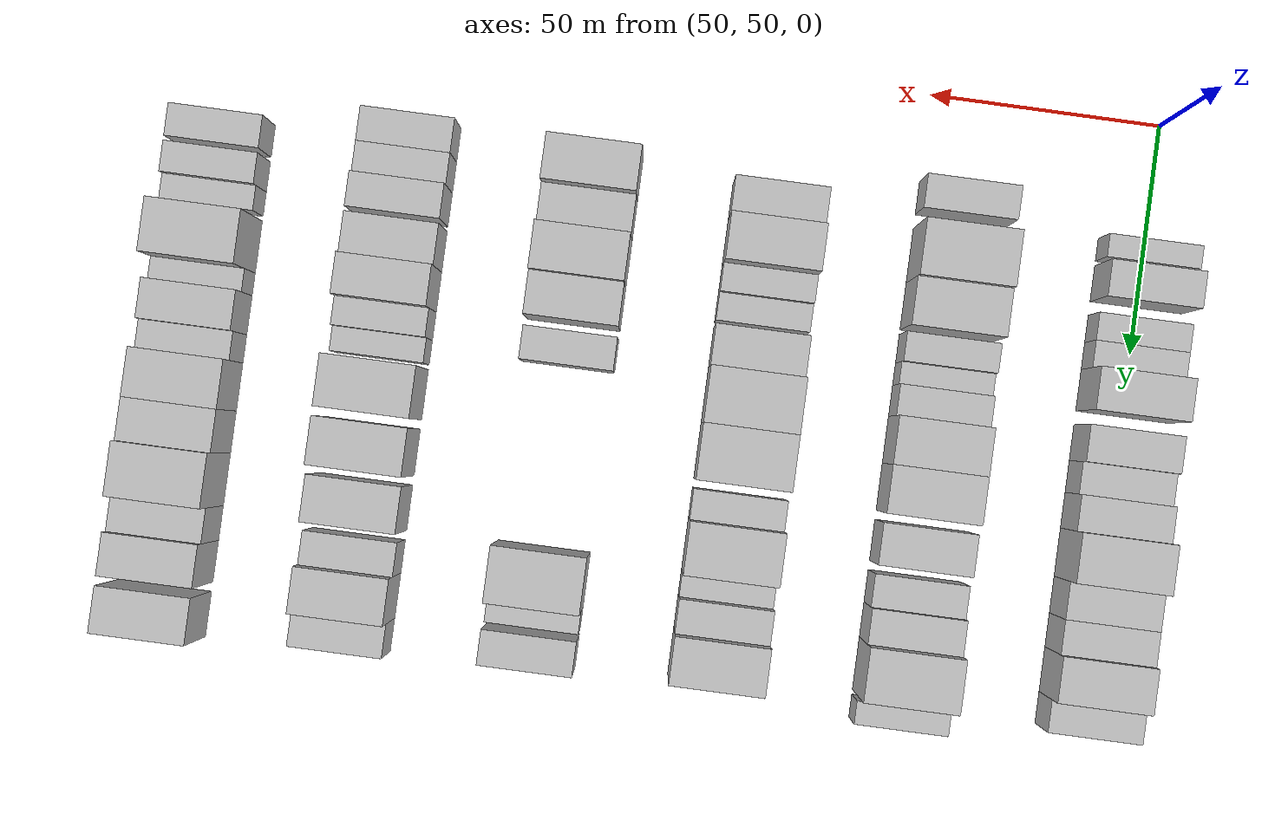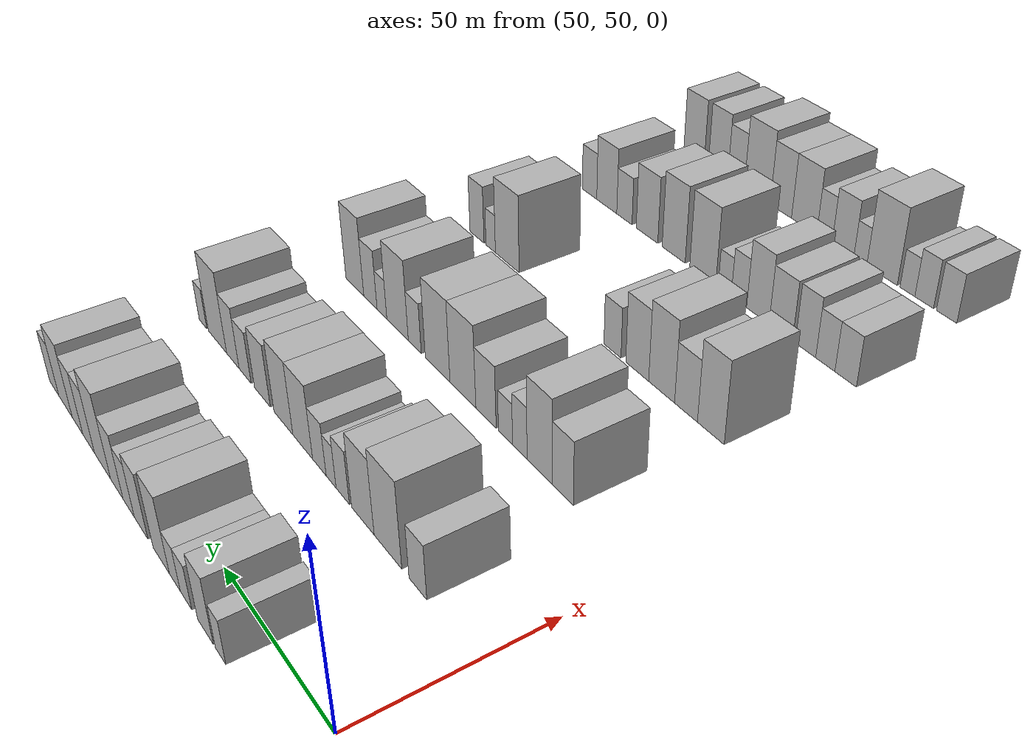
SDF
<sdf version="1.6">
 <world name="default">
  <model name="building_79">
   <static>1</static>
   <pose>50.0000 78.5266 0 0.000000 0.000000 0.000000</pose>
   <link name="link">
    <pose>0 0 6.00 0 0 0</pose>
    <collision name="collision"><geometry><box><size>20.0000 4.9561 12.0000</size></box></geometry></collision>
    <visual name="visual">
     <cast_shadows>0</cast_shadows>
     <geometry><box><size>20.0000 4.9561 12.0000</size></box></geometry>
     <material>
      <script>
       <uri>model://HANNAS_wall/materials/scripts</uri>
       <uri>model://HANNAS_wall/materials/textures</uri>
       <name>vrc/HANNAS_wall</name>
      </script>
     </material>
    </visual>
   </link>
  </model>
  <model name="building_80">
   <static>1</static>
   <pose>50.0000 85.9153 0 0.000000 0.000000 0.000000</pose>
   <link name="link">
    <pose>0 0 9.00 0 0 0</pose>
    <collision name="collision"><geometry><box><size>20.0000 7.8213 18.0000</size></box></geometry></collision>
    <visual name="visual">
     <cast_shadows>0</cast_shadows>
     <geometry><box><size>20.0000 7.8213 18.0000</size></box></geometry>
     <material>
      <script>
       <uri>model://HANNAS_wall/materials/scripts</uri>
       <uri>model://HANNAS_wall/materials/textures</uri>
       <name>vrc/HANNAS_wall</name>
      </script>
     </material>
    </visual>
   </link>
  </model>
  <model name="building_81">
   <static>1</static>
   <pose>50.0000 95.8062 0 0.000000 0.000000 0.000000</pose>
   <link name="link">
    <pose>0 0 6.00 0 0 0</pose>
    <collision name="collision"><geometry><box><size>20.0000 5.9605 12.0000</size></box></geometry></collision>
    <visual name="visual">
     <cast_shadows>0</cast_shadows>
     <geometry><box><size>20.0000 5.9605 12.0000</size></box></geometry>
     <material>
      <script>
       <uri>model://HANNAS_wall/materials/scripts</uri>
       <uri>model://HANNAS_wall/materials/textures</uri>
       <name>vrc/HANNAS_wall</name>
      </script>
     </material>
    </visual>
   </link>
  </model>
  <model name="building_82">
   <static>1</static>
   <pose>50.0000 101.7150 0 0.000000 0.000000 0.000000</pose>
   <link name="link">
    <pose>0 0 6.00 0 0 0</pose>
    <collision name="collision"><geometry><box><size>20.0000 5.8570 12.0000</size></box></geometry></collision>
    <visual name="visual">
     <cast_shadows>0</cast_shadows>
     <geometry><box><size>20.0000 5.8570 12.0000</size></box></geometry>
     <material>
      <script>
       <uri>model://HANNAS_wall/materials/scripts</uri>
       <uri>model://HANNAS_wall/materials/textures</uri>
       <name>vrc/HANNAS_wall</name>
      </script>
     </material>
    </visual>
   </link>
  </model>
  <model name="building_83">
   <static>1</static>
   <pose>50.0000 109.1819 0 0.000000 0.000000 0.000000</pose>
   <link name="link">
    <pose>0 0 10.50 0 0 0</pose>
    <collision name="collision"><geometry><box><size>20.0000 9.0769 21.0000</size></box></geometry></collision>
    <visual name="visual">
     <cast_shadows>0</cast_shadows>
     <geometry><box><size>20.0000 9.0769 21.0000</size></box></geometry>
     <material>
      <script>
       <uri>model://HANNAS_wall/materials/scripts</uri>
       <uri>model://HANNAS_wall/materials/textures</uri>
       <name>vrc/HANNAS_wall</name>
      </script>
     </material>
    </visual>
   </link>
  </model>
  <model name="building_84">
   <static>1</static>
   <pose>50.0000 120.6577 0 0.000000 0.000000 0.000000</pose>
   <link name="link">
    <pose>0 0 9.00 0 0 0</pose>
    <collision name="collision"><geometry><box><size>20.0000 7.8748 18.0000</size></box></geometry></collision>
    <visual name="visual">
     <cast_shadows>0</cast_shadows>
     <geometry><box><size>20.0000 7.8748 18.0000</size></box></geometry>
     <material>
      <script>
       <uri>model://HANNAS_wall/materials/scripts</uri>
       <uri>model://HANNAS_wall/materials/textures</uri>
       <name>vrc/HANNAS_wall</name>
      </script>
     </material>
    </visual>
   </link>
  </model>
  <model name="building_85">
   <static>1</static>
   <pose>50.0000 128.0377 0 0.000000 0.000000 0.000000</pose>
   <link name="link">
    <pose>0 0 7.50 0 0 0</pose>
    <collision name="collision"><geometry><box><size>20.0000 6.8852 15.0000</size></box></geometry></collision>
    <visual name="visual">
     <cast_shadows>0</cast_shadows>
     <geometry><box><size>20.0000 6.8852 15.0000</size></box></geometry>
     <material>
      <script>
       <uri>model://HANNAS_wall/materials/scripts</uri>
       <uri>model://HANNAS_wall/materials/textures</uri>
       <name>vrc/HANNAS_wall</name>
      </script>
     </material>
    </visual>
   </link>
  </model>
  <model name="building_86">
   <static>1</static>
   <pose>50.0000 135.3490 0 0.000000 0.000000 0.000000</pose>
   <link name="link">
    <pose>0 0 9.00 0 0 0</pose>
    <collision name="collision"><geometry><box><size>20.0000 7.7374 18.0000</size></box></geometry></collision>
    <visual name="visual">
     <cast_shadows>0</cast_shadows>
     <geometry><box><size>20.0000 7.7374 18.0000</size></box></geometry>
     <material>
      <script>
       <uri>model://HANNAS_wall/materials/scripts</uri>
       <uri>model://HANNAS_wall/materials/textures</uri>
       <name>vrc/HANNAS_wall</name>
      </script>
     </material>
    </visual>
   </link>
  </model>
  <model name="building_87">
   <static>1</static>
   <pose>50.0000 144.4885 0 0.000000 0.000000 0.000000</pose>
   <link name="link">
    <pose>0 0 12.00 0 0 0</pose>
    <collision name="collision"><geometry><box><size>20.0000 10.5414 24.0000</size></box></geometry></collision>
    <visual name="visual">
     <cast_shadows>0</cast_shadows>
     <geometry><box><size>20.0000 10.5414 24.0000</size></box></geometry>
     <material>
      <script>
       <uri>model://HANNAS_wall/materials/scripts</uri>
       <uri>model://HANNAS_wall/materials/textures</uri>
       <name>vrc/HANNAS_wall</name>
      </script>
     </material>
    </visual>
   </link>
  </model>
  <model name="building_88">
   <static>1</static>
   <pose>50.0000 153.7302 0 0.000000 0.000000 0.000000</pose>
   <link name="link">
    <pose>0 0 9.00 0 0 0</pose>
    <collision name="collision"><geometry><box><size>20.0000 7.9421 18.0000</size></box></geometry></collision>
    <visual name="visual">
     <cast_shadows>0</cast_shadows>
     <geometry><box><size>20.0000 7.9421 18.0000</size></box></geometry>
     <material>
      <script>
       <uri>model://HANNAS_wall/materials/scripts</uri>
       <uri>model://HANNAS_wall/materials/textures</uri>
       <name>vrc/HANNAS_wall</name>
      </script>
     </material>
    </visual>
   </link>
  </model>
  <model name="building_89">
   <static>1</static>
   <pose>50.0000 161.4098 0 0.000000 0.000000 0.000000</pose>
   <link name="link">
    <pose>0 0 9.00 0 0 0</pose>
    <collision name="collision"><geometry><box><size>20.0000 7.4171 18.0000</size></box></geometry></collision>
    <visual name="visual">
     <cast_shadows>0</cast_shadows>
     <geometry><box><size>20.0000 7.4171 18.0000</size></box></geometry>
     <material>
      <script>
       <uri>model://HANNAS_wall/materials/scripts</uri>
       <uri>model://HANNAS_wall/materials/textures</uri>
       <name>vrc/HANNAS_wall</name>
      </script>
     </material>
    </visual>
   </link>
  </model>
  <model name="building_90">
   <static>1</static>
   <pose>50.0000 169.9798 0 0.000000 0.000000 0.000000</pose>
   <link name="link">
    <pose>0 0 10.50 0 0 0</pose>
    <collision name="collision"><geometry><box><size>20.0000 9.7229 21.0000</size></box></geometry></collision>
    <visual name="visual">
     <cast_shadows>0</cast_shadows>
     <geometry><box><size>20.0000 9.7229 21.0000</size></box></geometry>
     <material>
      <script>
       <uri>model://HANNAS_wall/materials/scripts</uri>
       <uri>model://HANNAS_wall/materials/textures</uri>
       <name>vrc/HANNAS_wall</name>
      </script>
     </material>
    </visual>
   </link>
  </model>
  <model name="building_91">
   <static>1</static>
   <pose>50.0000 178.2865 0 0.000000 0.000000 0.000000</pose>
   <link name="link">
    <pose>0 0 7.50 0 0 0</pose>
    <collision name="collision"><geometry><box><size>20.0000 6.8904 15.0000</size></box></geometry></collision>
    <visual name="visual">
     <cast_shadows>0</cast_shadows>
     <geometry><box><size>20.0000 6.8904 15.0000</size></box></geometry>
     <material>
      <script>
       <uri>model://HANNAS_wall/materials/scripts</uri>
       <uri>model://HANNAS_wall/materials/textures</uri>
       <name>vrc/HANNAS_wall</name>
      </script>
     </material>
    </visual>
   </link>
  </model>
  <model name="building_218">
   <static>1</static>
   <pose>90.0000 72.5578 0 0.000000 0.000000 0.000000</pose>
   <link name="link">
    <pose>0 0 7.50 0 0 0</pose>
    <collision name="collision"><geometry><box><size>20.0000 7.2474 15.0000</size></box></geometry></collision>
    <visual name="visual">
     <cast_shadows>0</cast_shadows>
     <geometry><box><size>20.0000 7.2474 15.0000</size></box></geometry>
     <material>
      <script>
       <uri>model://HANNAS_wall/materials/scripts</uri>
       <uri>model://HANNAS_wall/materials/textures</uri>
       <name>vrc/HANNAS_wall</name>
      </script>
     </material>
    </visual>
   </link>
  </model>
  <model name="building_219">
   <static>1</static>
   <pose>90.0000 85.1501 0 0.000000 0.000000 0.000000</pose>
   <link name="link">
    <pose>0 0 12.00 0 0 0</pose>
    <collision name="collision"><geometry><box><size>20.0000 11.9372 24.0000</size></box></geometry></collision>
    <visual name="visual">
     <cast_shadows>0</cast_shadows>
     <geometry><box><size>20.0000 11.9372 24.0000</size></box></geometry>
     <material>
      <script>
       <uri>model://HANNAS_wall/materials/scripts</uri>
       <uri>model://HANNAS_wall/materials/textures</uri>
       <name>vrc/HANNAS_wall</name>
      </script>
     </material>
    </visual>
   </link>
  </model>
  <model name="building_220">
   <static>1</static>
   <pose>90.0000 96.2433 0 0.000000 0.000000 0.000000</pose>
   <link name="link">
    <pose>0 0 10.50 0 0 0</pose>
    <collision name="collision"><geometry><box><size>20.0000 10.2491 21.0000</size></box></geometry></collision>
    <visual name="visual">
     <cast_shadows>0</cast_shadows>
     <geometry><box><size>20.0000 10.2491 21.0000</size></box></geometry>
     <material>
      <script>
       <uri>model://HANNAS_wall/materials/scripts</uri>
       <uri>model://HANNAS_wall/materials/textures</uri>
       <name>vrc/HANNAS_wall</name>
      </script>
     </material>
    </visual>
   </link>
  </model>
  <model name="building_221">
   <static>1</static>
   <pose>90.0000 105.5268 0 0.000000 0.000000 0.000000</pose>
   <link name="link">
    <pose>0 0 7.50 0 0 0</pose>
    <collision name="collision"><geometry><box><size>20.0000 6.3178 15.0000</size></box></geometry></collision>
    <visual name="visual">
     <cast_shadows>0</cast_shadows>
     <geometry><box><size>20.0000 6.3178 15.0000</size></box></geometry>
     <material>
      <script>
       <uri>model://HANNAS_wall/materials/scripts</uri>
       <uri>model://HANNAS_wall/materials/textures</uri>
       <name>vrc/HANNAS_wall</name>
      </script>
     </material>
    </visual>
   </link>
  </model>
  <model name="building_222">
   <static>1</static>
   <pose>90.0000 111.1008 0 0.000000 0.000000 0.000000</pose>
   <link name="link">
    <pose>0 0 6.00 0 0 0</pose>
    <collision name="collision"><geometry><box><size>20.0000 4.8302 12.0000</size></box></geometry></collision>
    <visual name="visual">
     <cast_shadows>0</cast_shadows>
     <geometry><box><size>20.0000 4.8302 12.0000</size></box></geometry>
     <material>
      <script>
       <uri>model://HANNAS_wall/materials/scripts</uri>
       <uri>model://HANNAS_wall/materials/textures</uri>
       <name>vrc/HANNAS_wall</name>
      </script>
     </material>
    </visual>
   </link>
  </model>
  <model name="building_223">
   <static>1</static>
   <pose>90.0000 116.8821 0 0.000000 0.000000 0.000000</pose>
   <link name="link">
    <pose>0 0 7.50 0 0 0</pose>
    <collision name="collision"><geometry><box><size>20.0000 6.7323 15.0000</size></box></geometry></collision>
    <visual name="visual">
     <cast_shadows>0</cast_shadows>
     <geometry><box><size>20.0000 6.7323 15.0000</size></box></geometry>
     <material>
      <script>
       <uri>model://HANNAS_wall/materials/scripts</uri>
       <uri>model://HANNAS_wall/materials/textures</uri>
       <name>vrc/HANNAS_wall</name>
      </script>
     </material>
    </visual>
   </link>
  </model>
  <model name="building_224">
   <static>1</static>
   <pose>90.0000 125.3659 0 0.000000 0.000000 0.000000</pose>
   <link name="link">
    <pose>0 0 10.50 0 0 0</pose>
    <collision name="collision"><geometry><box><size>20.0000 10.2353 21.0000</size></box></geometry></collision>
    <visual name="visual">
     <cast_shadows>0</cast_shadows>
     <geometry><box><size>20.0000 10.2353 21.0000</size></box></geometry>
     <material>
      <script>
       <uri>model://HANNAS_wall/materials/scripts</uri>
       <uri>model://HANNAS_wall/materials/textures</uri>
       <name>vrc/HANNAS_wall</name>
      </script>
     </material>
    </visual>
   </link>
  </model>
  <model name="building_225">
   <static>1</static>
   <pose>90.0000 135.5901 0 0.000000 0.000000 0.000000</pose>
   <link name="link">
    <pose>0 0 10.50 0 0 0</pose>
    <collision name="collision"><geometry><box><size>20.0000 10.2130 21.0000</size></box></geometry></collision>
    <visual name="visual">
     <cast_shadows>0</cast_shadows>
     <geometry><box><size>20.0000 10.2130 21.0000</size></box></geometry>
     <material>
      <script>
       <uri>model://HANNAS_wall/materials/scripts</uri>
       <uri>model://HANNAS_wall/materials/textures</uri>
       <name>vrc/HANNAS_wall</name>
      </script>
     </material>
    </visual>
   </link>
  </model>
  <model name="building_226">
   <static>1</static>
   <pose>90.0000 147.1667 0 0.000000 0.000000 0.000000</pose>
   <link name="link">
    <pose>0 0 9.00 0 0 0</pose>
    <collision name="collision"><geometry><box><size>20.0000 8.9402 18.0000</size></box></geometry></collision>
    <visual name="visual">
     <cast_shadows>0</cast_shadows>
     <geometry><box><size>20.0000 8.9402 18.0000</size></box></geometry>
     <material>
      <script>
       <uri>model://HANNAS_wall/materials/scripts</uri>
       <uri>model://HANNAS_wall/materials/textures</uri>
       <name>vrc/HANNAS_wall</name>
      </script>
     </material>
    </visual>
   </link>
  </model>
  <model name="building_227">
   <static>1</static>
   <pose>90.0000 157.1695 0 0.000000 0.000000 0.000000</pose>
   <link name="link">
    <pose>0 0 7.50 0 0 0</pose>
    <collision name="collision"><geometry><box><size>20.0000 7.0654 15.0000</size></box></geometry></collision>
    <visual name="visual">
     <cast_shadows>0</cast_shadows>
     <geometry><box><size>20.0000 7.0654 15.0000</size></box></geometry>
     <material>
      <script>
       <uri>model://HANNAS_wall/materials/scripts</uri>
       <uri>model://HANNAS_wall/materials/textures</uri>
       <name>vrc/HANNAS_wall</name>
      </script>
     </material>
    </visual>
   </link>
  </model>
  <model name="building_228">
   <static>1</static>
   <pose>90.0000 164.5035 0 0.000000 0.000000 0.000000</pose>
   <link name="link">
    <pose>0 0 9.00 0 0 0</pose>
    <collision name="collision"><geometry><box><size>20.0000 7.6026 18.0000</size></box></geometry></collision>
    <visual name="visual">
     <cast_shadows>0</cast_shadows>
     <geometry><box><size>20.0000 7.6026 18.0000</size></box></geometry>
     <material>
      <script>
       <uri>model://HANNAS_wall/materials/scripts</uri>
       <uri>model://HANNAS_wall/materials/textures</uri>
       <name>vrc/HANNAS_wall</name>
      </script>
     </material>
    </visual>
   </link>
  </model>
  <model name="building_229">
   <static>1</static>
   <pose>90.0000 174.0347 0 0.000000 0.000000 0.000000</pose>
   <link name="link">
    <pose>0 0 12.00 0 0 0</pose>
    <collision name="collision"><geometry><box><size>20.0000 11.4598 24.0000</size></box></geometry></collision>
    <visual name="visual">
     <cast_shadows>0</cast_shadows>
     <geometry><box><size>20.0000 11.4598 24.0000</size></box></geometry>
     <material>
      <script>
       <uri>model://HANNAS_wall/materials/scripts</uri>
       <uri>model://HANNAS_wall/materials/textures</uri>
       <name>vrc/HANNAS_wall</name>
      </script>
     </material>
    </visual>
   </link>
  </model>
  <model name="building_230">
   <static>1</static>
   <pose>90.0000 183.2407 0 0.000000 0.000000 0.000000</pose>
   <link name="link">
    <pose>0 0 6.00 0 0 0</pose>
    <collision name="collision"><geometry><box><size>20.0000 4.9522 12.0000</size></box></geometry></collision>
    <visual name="visual">
     <cast_shadows>0</cast_shadows>
     <geometry><box><size>20.0000 4.9522 12.0000</size></box></geometry>
     <material>
      <script>
       <uri>model://HANNAS_wall/materials/scripts</uri>
       <uri>model://HANNAS_wall/materials/textures</uri>
       <name>vrc/HANNAS_wall</name>
      </script>
     </material>
    </visual>
   </link>
  </model>
  <model name="building_348">
   <static>1</static>
   <pose>130.0000 79.0919 0 0.000000 0.000000 0.000000</pose>
   <link name="link">
    <pose>0 0 9.00 0 0 0</pose>
    <collision name="collision"><geometry><box><size>20.0000 8.2131 18.0000</size></box></geometry></collision>
    <visual name="visual">
     <cast_shadows>0</cast_shadows>
     <geometry><box><size>20.0000 8.2131 18.0000</size></box></geometry>
     <material>
      <script>
       <uri>model://HANNAS_wall/materials/scripts</uri>
       <uri>model://HANNAS_wall/materials/textures</uri>
       <name>vrc/HANNAS_wall</name>
      </script>
     </material>
    </visual>
   </link>
  </model>
  <model name="building_349">
   <static>1</static>
   <pose>130.0000 88.1935 0 0.000000 0.000000 0.000000</pose>
   <link name="link">
    <pose>0 0 12.00 0 0 0</pose>
    <collision name="collision"><geometry><box><size>20.0000 9.9902 24.0000</size></box></geometry></collision>
    <visual name="visual">
     <cast_shadows>0</cast_shadows>
     <geometry><box><size>20.0000 9.9902 24.0000</size></box></geometry>
     <material>
      <script>
       <uri>model://HANNAS_wall/materials/scripts</uri>
       <uri>model://HANNAS_wall/materials/textures</uri>
       <name>vrc/HANNAS_wall</name>
      </script>
     </material>
    </visual>
   </link>
  </model>
  <model name="building_350">
   <static>1</static>
   <pose>130.0000 96.2096 0 0.000000 0.000000 0.000000</pose>
   <link name="link">
    <pose>0 0 7.50 0 0 0</pose>
    <collision name="collision"><geometry><box><size>20.0000 6.0419 15.0000</size></box></geometry></collision>
    <visual name="visual">
     <cast_shadows>0</cast_shadows>
     <geometry><box><size>20.0000 6.0419 15.0000</size></box></geometry>
     <material>
      <script>
       <uri>model://HANNAS_wall/materials/scripts</uri>
       <uri>model://HANNAS_wall/materials/textures</uri>
       <name>vrc/HANNAS_wall</name>
      </script>
     </material>
    </visual>
   </link>
  </model>
  <model name="building_351">
   <static>1</static>
   <pose>130.0000 102.2278 0 0.000000 0.000000 0.000000</pose>
   <link name="link">
    <pose>0 0 6.00 0 0 0</pose>
    <collision name="collision"><geometry><box><size>20.0000 5.9946 12.0000</size></box></geometry></collision>
    <visual name="visual">
     <cast_shadows>0</cast_shadows>
     <geometry><box><size>20.0000 5.9946 12.0000</size></box></geometry>
     <material>
      <script>
       <uri>model://HANNAS_wall/materials/scripts</uri>
       <uri>model://HANNAS_wall/materials/textures</uri>
       <name>vrc/HANNAS_wall</name>
      </script>
     </material>
    </visual>
   </link>
  </model>
  <model name="building_352">
   <static>1</static>
   <pose>130.0000 110.6899 0 0.000000 0.000000 0.000000</pose>
   <link name="link">
    <pose>0 0 9.00 0 0 0</pose>
    <collision name="collision"><geometry><box><size>20.0000 8.9295 18.0000</size></box></geometry></collision>
    <visual name="visual">
     <cast_shadows>0</cast_shadows>
     <geometry><box><size>20.0000 8.9295 18.0000</size></box></geometry>
     <material>
      <script>
       <uri>model://HANNAS_wall/materials/scripts</uri>
       <uri>model://HANNAS_wall/materials/textures</uri>
       <name>vrc/HANNAS_wall</name>
      </script>
     </material>
    </visual>
   </link>
  </model>
  <model name="building_353">
   <static>1</static>
   <pose>130.0000 121.1215 0 0.000000 0.000000 0.000000</pose>
   <link name="link">
    <pose>0 0 12.00 0 0 0</pose>
    <collision name="collision"><geometry><box><size>20.0000 11.9339 24.0000</size></box></geometry></collision>
    <visual name="visual">
     <cast_shadows>0</cast_shadows>
     <geometry><box><size>20.0000 11.9339 24.0000</size></box></geometry>
     <material>
      <script>
       <uri>model://HANNAS_wall/materials/scripts</uri>
       <uri>model://HANNAS_wall/materials/textures</uri>
       <name>vrc/HANNAS_wall</name>
      </script>
     </material>
    </visual>
   </link>
  </model>
  <model name="building_354">
   <static>1</static>
   <pose>130.0000 133.0567 0 0.000000 0.000000 0.000000</pose>
   <link name="link">
    <pose>0 0 12.00 0 0 0</pose>
    <collision name="collision"><geometry><box><size>20.0000 11.9364 24.0000</size></box></geometry></collision>
    <visual name="visual">
     <cast_shadows>0</cast_shadows>
     <geometry><box><size>20.0000 11.9364 24.0000</size></box></geometry>
     <material>
      <script>
       <uri>model://HANNAS_wall/materials/scripts</uri>
       <uri>model://HANNAS_wall/materials/textures</uri>
       <name>vrc/HANNAS_wall</name>
      </script>
     </material>
    </visual>
   </link>
  </model>
  <model name="building_355">
   <static>1</static>
   <pose>130.0000 144.3015 0 0.000000 0.000000 0.000000</pose>
   <link name="link">
    <pose>0 0 7.50 0 0 0</pose>
    <collision name="collision"><geometry><box><size>20.0000 6.5532 15.0000</size></box></geometry></collision>
    <visual name="visual">
     <cast_shadows>0</cast_shadows>
     <geometry><box><size>20.0000 6.5532 15.0000</size></box></geometry>
     <material>
      <script>
       <uri>model://HANNAS_wall/materials/scripts</uri>
       <uri>model://HANNAS_wall/materials/textures</uri>
       <name>vrc/HANNAS_wall</name>
      </script>
     </material>
    </visual>
   </link>
  </model>
  <model name="building_356">
   <static>1</static>
   <pose>130.0000 153.1921 0 0.000000 0.000000 0.000000</pose>
   <link name="link">
    <pose>0 0 12.00 0 0 0</pose>
    <collision name="collision"><geometry><box><size>20.0000 11.2281 24.0000</size></box></geometry></collision>
    <visual name="visual">
     <cast_shadows>0</cast_shadows>
     <geometry><box><size>20.0000 11.2281 24.0000</size></box></geometry>
     <material>
      <script>
       <uri>model://HANNAS_wall/materials/scripts</uri>
       <uri>model://HANNAS_wall/materials/textures</uri>
       <name>vrc/HANNAS_wall</name>
      </script>
     </material>
    </visual>
   </link>
  </model>
  <model name="building_357">
   <static>1</static>
   <pose>130.0000 161.4368 0 0.000000 0.000000 0.000000</pose>
   <link name="link">
    <pose>0 0 6.00 0 0 0</pose>
    <collision name="collision"><geometry><box><size>20.0000 5.2612 12.0000</size></box></geometry></collision>
    <visual name="visual">
     <cast_shadows>0</cast_shadows>
     <geometry><box><size>20.0000 5.2612 12.0000</size></box></geometry>
     <material>
      <script>
       <uri>model://HANNAS_wall/materials/scripts</uri>
       <uri>model://HANNAS_wall/materials/textures</uri>
       <name>vrc/HANNAS_wall</name>
      </script>
     </material>
    </visual>
   </link>
  </model>
  <model name="building_358">
   <static>1</static>
   <pose>130.0000 167.7243 0 0.000000 0.000000 0.000000</pose>
   <link name="link">
    <pose>0 0 9.00 0 0 0</pose>
    <collision name="collision"><geometry><box><size>20.0000 7.3138 18.0000</size></box></geometry></collision>
    <visual name="visual">
     <cast_shadows>0</cast_shadows>
     <geometry><box><size>20.0000 7.3138 18.0000</size></box></geometry>
     <material>
      <script>
       <uri>model://HANNAS_wall/materials/scripts</uri>
       <uri>model://HANNAS_wall/materials/textures</uri>
       <name>vrc/HANNAS_wall</name>
      </script>
     </material>
    </visual>
   </link>
  </model>
  <model name="building_359">
   <static>1</static>
   <pose>130.0000 176.4568 0 0.000000 0.000000 0.000000</pose>
   <link name="link">
    <pose>0 0 12.00 0 0 0</pose>
    <collision name="collision"><geometry><box><size>20.0000 10.1512 24.0000</size></box></geometry></collision>
    <visual name="visual">
     <cast_shadows>0</cast_shadows>
     <geometry><box><size>20.0000 10.1512 24.0000</size></box></geometry>
     <material>
      <script>
       <uri>model://HANNAS_wall/materials/scripts</uri>
       <uri>model://HANNAS_wall/materials/textures</uri>
       <name>vrc/HANNAS_wall</name>
      </script>
     </material>
    </visual>
   </link>
  </model>
  <model name="building_473">
   <static>1</static>
   <pose>170.0000 77.0119 0 0.000000 0.000000 0.000000</pose>
   <link name="link">
    <pose>0 0 12.00 0 0 0</pose>
    <collision name="collision"><geometry><box><size>20.0000 9.6769 24.0000</size></box></geometry></collision>
    <visual name="visual">
     <cast_shadows>0</cast_shadows>
     <geometry><box><size>20.0000 9.6769 24.0000</size></box></geometry>
     <material>
      <script>
       <uri>model://HANNAS_wall/materials/scripts</uri>
       <uri>model://HANNAS_wall/materials/textures</uri>
       <name>vrc/HANNAS_wall</name>
      </script>
     </material>
    </visual>
   </link>
  </model>
  <model name="building_474">
   <static>1</static>
   <pose>170.0000 86.1247 0 0.000000 0.000000 0.000000</pose>
   <link name="link">
    <pose>0 0 9.00 0 0 0</pose>
    <collision name="collision"><geometry><box><size>20.0000 8.5487 18.0000</size></box></geometry></collision>
    <visual name="visual">
     <cast_shadows>0</cast_shadows>
     <geometry><box><size>20.0000 8.5487 18.0000</size></box></geometry>
     <material>
      <script>
       <uri>model://HANNAS_wall/materials/scripts</uri>
       <uri>model://HANNAS_wall/materials/textures</uri>
       <name>vrc/HANNAS_wall</name>
      </script>
     </material>
    </visual>
   </link>
  </model>
  <model name="building_475">
   <static>1</static>
   <pose>170.0000 95.4562 0 0.000000 0.000000 0.000000</pose>
   <link name="link">
    <pose>0 0 12.00 0 0 0</pose>
    <collision name="collision"><geometry><box><size>20.0000 10.1144 24.0000</size></box></geometry></collision>
    <visual name="visual">
     <cast_shadows>0</cast_shadows>
     <geometry><box><size>20.0000 10.1144 24.0000</size></box></geometry>
     <material>
      <script>
       <uri>model://HANNAS_wall/materials/scripts</uri>
       <uri>model://HANNAS_wall/materials/textures</uri>
       <name>vrc/HANNAS_wall</name>
      </script>
     </material>
    </visual>
   </link>
  </model>
  <model name="building_476">
   <static>1</static>
   <pose>170.0000 105.1400 0 0.000000 0.000000 0.000000</pose>
   <link name="link">
    <pose>0 0 10.50 0 0 0</pose>
    <collision name="collision"><geometry><box><size>20.0000 9.2533 21.0000</size></box></geometry></collision>
    <visual name="visual">
     <cast_shadows>0</cast_shadows>
     <geometry><box><size>20.0000 9.2533 21.0000</size></box></geometry>
     <material>
      <script>
       <uri>model://HANNAS_wall/materials/scripts</uri>
       <uri>model://HANNAS_wall/materials/textures</uri>
       <name>vrc/HANNAS_wall</name>
      </script>
     </material>
    </visual>
   </link>
  </model>
  <model name="building_477">
   <static>1</static>
   <pose>170.0000 115.3494 0 0.000000 0.000000 0.000000</pose>
   <link name="link">
    <pose>0 0 7.50 0 0 0</pose>
    <collision name="collision"><geometry><box><size>20.0000 7.1655 15.0000</size></box></geometry></collision>
    <visual name="visual">
     <cast_shadows>0</cast_shadows>
     <geometry><box><size>20.0000 7.1655 15.0000</size></box></geometry>
     <material>
      <script>
       <uri>model://HANNAS_wall/materials/scripts</uri>
       <uri>model://HANNAS_wall/materials/textures</uri>
       <name>vrc/HANNAS_wall</name>
      </script>
     </material>
    </visual>
   </link>
  </model>
  <model name="building_478">
   <static>1</static>
   <pose>170.0000 163.9040 0 0.000000 0.000000 0.000000</pose>
   <link name="link">
    <pose>0 0 12.00 0 0 0</pose>
    <collision name="collision"><geometry><box><size>20.0000 11.9812 24.0000</size></box></geometry></collision>
    <visual name="visual">
     <cast_shadows>0</cast_shadows>
     <geometry><box><size>20.0000 11.9812 24.0000</size></box></geometry>
     <material>
      <script>
       <uri>model://HANNAS_wall/materials/scripts</uri>
       <uri>model://HANNAS_wall/materials/textures</uri>
       <name>vrc/HANNAS_wall</name>
      </script>
     </material>
    </visual>
   </link>
  </model>
  <model name="building_479">
   <static>1</static>
   <pose>170.0000 172.3459 0 0.000000 0.000000 0.000000</pose>
   <link name="link">
    <pose>0 0 6.00 0 0 0</pose>
    <collision name="collision"><geometry><box><size>20.0000 4.9026 12.0000</size></box></geometry></collision>
    <visual name="visual">
     <cast_shadows>0</cast_shadows>
     <geometry><box><size>20.0000 4.9026 12.0000</size></box></geometry>
     <material>
      <script>
       <uri>model://HANNAS_wall/materials/scripts</uri>
       <uri>model://HANNAS_wall/materials/textures</uri>
       <name>vrc/HANNAS_wall</name>
      </script>
     </material>
    </visual>
   </link>
  </model>
  <model name="building_480">
   <static>1</static>
   <pose>170.0000 179.5429 0 0.000000 0.000000 0.000000</pose>
   <link name="link">
    <pose>0 0 9.00 0 0 0</pose>
    <collision name="collision"><geometry><box><size>20.0000 7.4915 18.0000</size></box></geometry></collision>
    <visual name="visual">
     <cast_shadows>0</cast_shadows>
     <geometry><box><size>20.0000 7.4915 18.0000</size></box></geometry>
     <material>
      <script>
       <uri>model://HANNAS_wall/materials/scripts</uri>
       <uri>model://HANNAS_wall/materials/textures</uri>
       <name>vrc/HANNAS_wall</name>
      </script>
     </material>
    </visual>
   </link>
  </model>
  <model name="building_595">
   <static>1</static>
   <pose>210.0000 74.3525 0 0.000000 0.000000 0.000000</pose>
   <link name="link">
    <pose>0 0 7.50 0 0 0</pose>
    <collision name="collision"><geometry><box><size>20.0000 7.4149 15.0000</size></box></geometry></collision>
    <visual name="visual">
     <cast_shadows>0</cast_shadows>
     <geometry><box><size>20.0000 7.4149 15.0000</size></box></geometry>
     <material>
      <script>
       <uri>model://HANNAS_wall/materials/scripts</uri>
       <uri>model://HANNAS_wall/materials/textures</uri>
       <name>vrc/HANNAS_wall</name>
      </script>
     </material>
    </visual>
   </link>
  </model>
  <model name="building_596">
   <static>1</static>
   <pose>210.0000 81.4558 0 0.000000 0.000000 0.000000</pose>
   <link name="link">
    <pose>0 0 7.50 0 0 0</pose>
    <collision name="collision"><geometry><box><size>20.0000 6.7917 15.0000</size></box></geometry></collision>
    <visual name="visual">
     <cast_shadows>0</cast_shadows>
     <geometry><box><size>20.0000 6.7917 15.0000</size></box></geometry>
     <material>
      <script>
       <uri>model://HANNAS_wall/materials/scripts</uri>
       <uri>model://HANNAS_wall/materials/textures</uri>
       <name>vrc/HANNAS_wall</name>
      </script>
     </material>
    </visual>
   </link>
  </model>
  <model name="building_597">
   <static>1</static>
   <pose>210.0000 88.5692 0 0.000000 0.000000 0.000000</pose>
   <link name="link">
    <pose>0 0 9.00 0 0 0</pose>
    <collision name="collision"><geometry><box><size>20.0000 7.4352 18.0000</size></box></geometry></collision>
    <visual name="visual">
     <cast_shadows>0</cast_shadows>
     <geometry><box><size>20.0000 7.4352 18.0000</size></box></geometry>
     <material>
      <script>
       <uri>model://HANNAS_wall/materials/scripts</uri>
       <uri>model://HANNAS_wall/materials/textures</uri>
       <name>vrc/HANNAS_wall</name>
      </script>
     </material>
    </visual>
   </link>
  </model>
  <model name="building_598">
   <static>1</static>
   <pose>210.0000 97.7157 0 0.000000 0.000000 0.000000</pose>
   <link name="link">
    <pose>0 0 9.00 0 0 0</pose>
    <collision name="collision"><geometry><box><size>20.0000 8.8576 18.0000</size></box></geometry></collision>
    <visual name="visual">
     <cast_shadows>0</cast_shadows>
     <geometry><box><size>20.0000 8.8576 18.0000</size></box></geometry>
     <material>
      <script>
       <uri>model://HANNAS_wall/materials/scripts</uri>
       <uri>model://HANNAS_wall/materials/textures</uri>
       <name>vrc/HANNAS_wall</name>
      </script>
     </material>
    </visual>
   </link>
  </model>
  <model name="building_599">
   <static>1</static>
   <pose>210.0000 106.5293 0 0.000000 0.000000 0.000000</pose>
   <link name="link">
    <pose>0 0 10.50 0 0 0</pose>
    <collision name="collision"><geometry><box><size>20.0000 8.7696 21.0000</size></box></geometry></collision>
    <visual name="visual">
     <cast_shadows>0</cast_shadows>
     <geometry><box><size>20.0000 8.7696 21.0000</size></box></geometry>
     <material>
      <script>
       <uri>model://HANNAS_wall/materials/scripts</uri>
       <uri>model://HANNAS_wall/materials/textures</uri>
       <name>vrc/HANNAS_wall</name>
      </script>
     </material>
    </visual>
   </link>
  </model>
  <model name="building_600">
   <static>1</static>
   <pose>210.0000 114.0040 0 0.000000 0.000000 0.000000</pose>
   <link name="link">
    <pose>0 0 7.50 0 0 0</pose>
    <collision name="collision"><geometry><box><size>20.0000 6.1798 15.0000</size></box></geometry></collision>
    <visual name="visual">
     <cast_shadows>0</cast_shadows>
     <geometry><box><size>20.0000 6.1798 15.0000</size></box></geometry>
     <material>
      <script>
       <uri>model://HANNAS_wall/materials/scripts</uri>
       <uri>model://HANNAS_wall/materials/textures</uri>
       <name>vrc/HANNAS_wall</name>
      </script>
     </material>
    </visual>
   </link>
  </model>
  <model name="building_601">
   <static>1</static>
   <pose>210.0000 119.7705 0 0.000000 0.000000 0.000000</pose>
   <link name="link">
    <pose>0 0 6.00 0 0 0</pose>
    <collision name="collision"><geometry><box><size>20.0000 5.3533 12.0000</size></box></geometry></collision>
    <visual name="visual">
     <cast_shadows>0</cast_shadows>
     <geometry><box><size>20.0000 5.3533 12.0000</size></box></geometry>
     <material>
      <script>
       <uri>model://HANNAS_wall/materials/scripts</uri>
       <uri>model://HANNAS_wall/materials/textures</uri>
       <name>vrc/HANNAS_wall</name>
      </script>
     </material>
    </visual>
   </link>
  </model>
  <model name="building_602">
   <static>1</static>
   <pose>210.0000 128.9380 0 0.000000 0.000000 0.000000</pose>
   <link name="link">
    <pose>0 0 12.00 0 0 0</pose>
    <collision name="collision"><geometry><box><size>20.0000 10.9816 24.0000</size></box></geometry></collision>
    <visual name="visual">
     <cast_shadows>0</cast_shadows>
     <geometry><box><size>20.0000 10.9816 24.0000</size></box></geometry>
     <material>
      <script>
       <uri>model://HANNAS_wall/materials/scripts</uri>
       <uri>model://HANNAS_wall/materials/textures</uri>
       <name>vrc/HANNAS_wall</name>
      </script>
     </material>
    </visual>
   </link>
  </model>
  <model name="building_603">
   <static>1</static>
   <pose>210.0000 141.5180 0 0.000000 0.000000 0.000000</pose>
   <link name="link">
    <pose>0 0 12.00 0 0 0</pose>
    <collision name="collision"><geometry><box><size>20.0000 10.1784 24.0000</size></box></geometry></collision>
    <visual name="visual">
     <cast_shadows>0</cast_shadows>
     <geometry><box><size>20.0000 10.1784 24.0000</size></box></geometry>
     <material>
      <script>
       <uri>model://HANNAS_wall/materials/scripts</uri>
       <uri>model://HANNAS_wall/materials/textures</uri>
       <name>vrc/HANNAS_wall</name>
      </script>
     </material>
    </visual>
   </link>
  </model>
  <model name="building_604">
   <static>1</static>
   <pose>210.0000 153.5804 0 0.000000 0.000000 0.000000</pose>
   <link name="link">
    <pose>0 0 10.50 0 0 0</pose>
    <collision name="collision"><geometry><box><size>20.0000 9.9464 21.0000</size></box></geometry></collision>
    <visual name="visual">
     <cast_shadows>0</cast_shadows>
     <geometry><box><size>20.0000 9.9464 21.0000</size></box></geometry>
     <material>
      <script>
       <uri>model://HANNAS_wall/materials/scripts</uri>
       <uri>model://HANNAS_wall/materials/textures</uri>
       <name>vrc/HANNAS_wall</name>
      </script>
     </material>
    </visual>
   </link>
  </model>
  <model name="building_605">
   <static>1</static>
   <pose>210.0000 164.1995 0 0.000000 0.000000 0.000000</pose>
   <link name="link">
    <pose>0 0 7.50 0 0 0</pose>
    <collision name="collision"><geometry><box><size>20.0000 7.2919 15.0000</size></box></geometry></collision>
    <visual name="visual">
     <cast_shadows>0</cast_shadows>
     <geometry><box><size>20.0000 7.2919 15.0000</size></box></geometry>
     <material>
      <script>
       <uri>model://HANNAS_wall/materials/scripts</uri>
       <uri>model://HANNAS_wall/materials/textures</uri>
       <name>vrc/HANNAS_wall</name>
      </script>
     </material>
    </visual>
   </link>
  </model>
  <model name="building_606">
   <static>1</static>
   <pose>210.0000 172.7818 0 0.000000 0.000000 0.000000</pose>
   <link name="link">
    <pose>0 0 10.50 0 0 0</pose>
    <collision name="collision"><geometry><box><size>20.0000 9.8727 21.0000</size></box></geometry></collision>
    <visual name="visual">
     <cast_shadows>0</cast_shadows>
     <geometry><box><size>20.0000 9.8727 21.0000</size></box></geometry>
     <material>
      <script>
       <uri>model://HANNAS_wall/materials/scripts</uri>
       <uri>model://HANNAS_wall/materials/textures</uri>
       <name>vrc/HANNAS_wall</name>
      </script>
     </material>
    </visual>
   </link>
  </model>
  <model name="building_607">
   <static>1</static>
   <pose>210.0000 181.3599 0 0.000000 0.000000 0.000000</pose>
   <link name="link">
    <pose>0 0 7.50 0 0 0</pose>
    <collision name="collision"><geometry><box><size>20.0000 7.2834 15.0000</size></box></geometry></collision>
    <visual name="visual">
     <cast_shadows>0</cast_shadows>
     <geometry><box><size>20.0000 7.2834 15.0000</size></box></geometry>
     <material>
      <script>
       <uri>model://HANNAS_wall/materials/scripts</uri>
       <uri>model://HANNAS_wall/materials/textures</uri>
       <name>vrc/HANNAS_wall</name>
      </script>
     </material>
    </visual>
   </link>
  </model>
  <model name="building_730">
   <static>1</static>
   <pose>250.0000 78.8763 0 0.000000 0.000000 0.000000</pose>
   <link name="link">
    <pose>0 0 7.50 0 0 0</pose>
    <collision name="collision"><geometry><box><size>20.0000 6.9743 15.0000</size></box></geometry></collision>
    <visual name="visual">
     <cast_shadows>0</cast_shadows>
     <geometry><box><size>20.0000 6.9743 15.0000</size></box></geometry>
     <material>
      <script>
       <uri>model://HANNAS_wall/materials/scripts</uri>
       <uri>model://HANNAS_wall/materials/textures</uri>
       <name>vrc/HANNAS_wall</name>
      </script>
     </material>
    </visual>
   </link>
  </model>
  <model name="building_731">
   <static>1</static>
   <pose>250.0000 86.6556 0 0.000000 0.000000 0.000000</pose>
   <link name="link">
    <pose>0 0 7.50 0 0 0</pose>
    <collision name="collision"><geometry><box><size>20.0000 6.5842 15.0000</size></box></geometry></collision>
    <visual name="visual">
     <cast_shadows>0</cast_shadows>
     <geometry><box><size>20.0000 6.5842 15.0000</size></box></geometry>
     <material>
      <script>
       <uri>model://HANNAS_wall/materials/scripts</uri>
       <uri>model://HANNAS_wall/materials/textures</uri>
       <name>vrc/HANNAS_wall</name>
      </script>
     </material>
    </visual>
   </link>
  </model>
  <model name="building_732">
   <static>1</static>
   <pose>250.0000 92.6182 0 0.000000 0.000000 0.000000</pose>
   <link name="link">
    <pose>0 0 6.00 0 0 0</pose>
    <collision name="collision"><geometry><box><size>20.0000 5.3412 12.0000</size></box></geometry></collision>
    <visual name="visual">
     <cast_shadows>0</cast_shadows>
     <geometry><box><size>20.0000 5.3412 12.0000</size></box></geometry>
     <material>
      <script>
       <uri>model://HANNAS_wall/materials/scripts</uri>
       <uri>model://HANNAS_wall/materials/textures</uri>
       <name>vrc/HANNAS_wall</name>
      </script>
     </material>
    </visual>
   </link>
  </model>
  <model name="building_733">
   <static>1</static>
   <pose>250.0000 101.9790 0 0.000000 0.000000 0.000000</pose>
   <link name="link">
    <pose>0 0 12.00 0 0 0</pose>
    <collision name="collision"><geometry><box><size>20.0000 11.3804 24.0000</size></box></geometry></collision>
    <visual name="visual">
     <cast_shadows>0</cast_shadows>
     <geometry><box><size>20.0000 11.3804 24.0000</size></box></geometry>
     <material>
      <script>
       <uri>model://HANNAS_wall/materials/scripts</uri>
       <uri>model://HANNAS_wall/materials/textures</uri>
       <name>vrc/HANNAS_wall</name>
      </script>
     </material>
    </visual>
   </link>
  </model>
  <model name="building_734">
   <static>1</static>
   <pose>250.0000 110.1615 0 0.000000 0.000000 0.000000</pose>
   <link name="link">
    <pose>0 0 6.00 0 0 0</pose>
    <collision name="collision"><geometry><box><size>20.0000 4.9846 12.0000</size></box></geometry></collision>
    <visual name="visual">
     <cast_shadows>0</cast_shadows>
     <geometry><box><size>20.0000 4.9846 12.0000</size></box></geometry>
     <material>
      <script>
       <uri>model://HANNAS_wall/materials/scripts</uri>
       <uri>model://HANNAS_wall/materials/textures</uri>
       <name>vrc/HANNAS_wall</name>
      </script>
     </material>
    </visual>
   </link>
  </model>
  <model name="building_735">
   <static>1</static>
   <pose>250.0000 116.9269 0 0.000000 0.000000 0.000000</pose>
   <link name="link">
    <pose>0 0 9.00 0 0 0</pose>
    <collision name="collision"><geometry><box><size>20.0000 8.5462 18.0000</size></box></geometry></collision>
    <visual name="visual">
     <cast_shadows>0</cast_shadows>
     <geometry><box><size>20.0000 8.5462 18.0000</size></box></geometry>
     <material>
      <script>
       <uri>model://HANNAS_wall/materials/scripts</uri>
       <uri>model://HANNAS_wall/materials/textures</uri>
       <name>vrc/HANNAS_wall</name>
      </script>
     </material>
    </visual>
   </link>
  </model>
  <model name="building_736">
   <static>1</static>
   <pose>250.0000 124.2739 0 0.000000 0.000000 0.000000</pose>
   <link name="link">
    <pose>0 0 7.50 0 0 0</pose>
    <collision name="collision"><geometry><box><size>20.0000 6.1478 15.0000</size></box></geometry></collision>
    <visual name="visual">
     <cast_shadows>0</cast_shadows>
     <geometry><box><size>20.0000 6.1478 15.0000</size></box></geometry>
     <material>
      <script>
       <uri>model://HANNAS_wall/materials/scripts</uri>
       <uri>model://HANNAS_wall/materials/textures</uri>
       <name>vrc/HANNAS_wall</name>
      </script>
     </material>
    </visual>
   </link>
  </model>
  <model name="building_737">
   <static>1</static>
   <pose>250.0000 132.5818 0 0.000000 0.000000 0.000000</pose>
   <link name="link">
    <pose>0 0 10.50 0 0 0</pose>
    <collision name="collision"><geometry><box><size>20.0000 10.4679 21.0000</size></box></geometry></collision>
    <visual name="visual">
     <cast_shadows>0</cast_shadows>
     <geometry><box><size>20.0000 10.4679 21.0000</size></box></geometry>
     <material>
      <script>
       <uri>model://HANNAS_wall/materials/scripts</uri>
       <uri>model://HANNAS_wall/materials/textures</uri>
       <name>vrc/HANNAS_wall</name>
      </script>
     </material>
    </visual>
   </link>
  </model>
  <model name="building_738">
   <static>1</static>
   <pose>250.0000 142.3944 0 0.000000 0.000000 0.000000</pose>
   <link name="link">
    <pose>0 0 10.50 0 0 0</pose>
    <collision name="collision"><geometry><box><size>20.0000 9.1573 21.0000</size></box></geometry></collision>
    <visual name="visual">
     <cast_shadows>0</cast_shadows>
     <geometry><box><size>20.0000 9.1573 21.0000</size></box></geometry>
     <material>
      <script>
       <uri>model://HANNAS_wall/materials/scripts</uri>
       <uri>model://HANNAS_wall/materials/textures</uri>
       <name>vrc/HANNAS_wall</name>
      </script>
     </material>
    </visual>
   </link>
  </model>
  <model name="building_739">
   <static>1</static>
   <pose>250.0000 152.7370 0 0.000000 0.000000 0.000000</pose>
   <link name="link">
    <pose>0 0 12.00 0 0 0</pose>
    <collision name="collision"><geometry><box><size>20.0000 11.5279 24.0000</size></box></geometry></collision>
    <visual name="visual">
     <cast_shadows>0</cast_shadows>
     <geometry><box><size>20.0000 11.5279 24.0000</size></box></geometry>
     <material>
      <script>
       <uri>model://HANNAS_wall/materials/scripts</uri>
       <uri>model://HANNAS_wall/materials/textures</uri>
       <name>vrc/HANNAS_wall</name>
      </script>
     </material>
    </visual>
   </link>
  </model>
  <model name="building_740">
   <static>1</static>
   <pose>250.0000 162.2707 0 0.000000 0.000000 0.000000</pose>
   <link name="link">
    <pose>0 0 9.00 0 0 0</pose>
    <collision name="collision"><geometry><box><size>20.0000 7.5394 18.0000</size></box></geometry></collision>
    <visual name="visual">
     <cast_shadows>0</cast_shadows>
     <geometry><box><size>20.0000 7.5394 18.0000</size></box></geometry>
     <material>
      <script>
       <uri>model://HANNAS_wall/materials/scripts</uri>
       <uri>model://HANNAS_wall/materials/textures</uri>
       <name>vrc/HANNAS_wall</name>
      </script>
     </material>
    </visual>
   </link>
  </model>
  <model name="building_741">
   <static>1</static>
   <pose>250.0000 170.5988 0 0.000000 0.000000 0.000000</pose>
   <link name="link">
    <pose>0 0 10.50 0 0 0</pose>
    <collision name="collision"><geometry><box><size>20.0000 9.1169 21.0000</size></box></geometry></collision>
    <visual name="visual">
     <cast_shadows>0</cast_shadows>
     <geometry><box><size>20.0000 9.1169 21.0000</size></box></geometry>
     <material>
      <script>
       <uri>model://HANNAS_wall/materials/scripts</uri>
       <uri>model://HANNAS_wall/materials/textures</uri>
       <name>vrc/HANNAS_wall</name>
      </script>
     </material>
    </visual>
   </link>
  </model>
  <model name="building_742">
   <static>1</static>
   <pose>250.0000 182.1180 0 0.000000 0.000000 0.000000</pose>
   <link name="link">
    <pose>0 0 10.50 0 0 0</pose>
    <collision name="collision"><geometry><box><size>20.0000 9.9214 21.0000</size></box></geometry></collision>
    <visual name="visual">
     <cast_shadows>0</cast_shadows>
     <geometry><box><size>20.0000 9.9214 21.0000</size></box></geometry>
     <material>
      <script>
       <uri>model://HANNAS_wall/materials/scripts</uri>
       <uri>model://HANNAS_wall/materials/textures</uri>
       <name>vrc/HANNAS_wall</name>
      </script>
     </material>
    </visual>
   </link>
  </model>
 </world>
</sdf>
